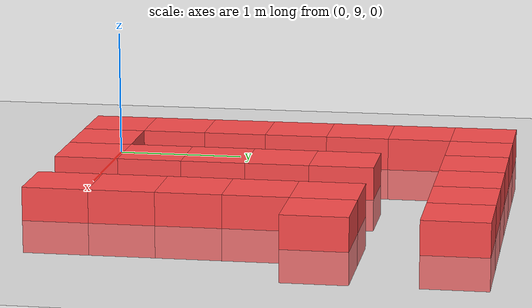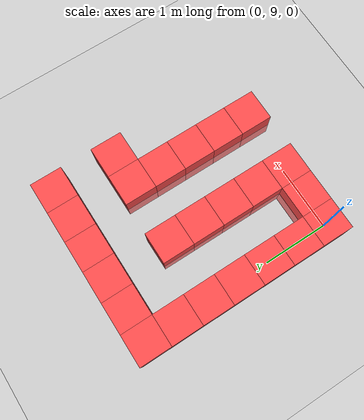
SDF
<sdf version="1.6">
 <world name="default">
  <model name="ground_plane">
   <static>1</static>
   <link name="link">
    <collision name="collision">
     <geometry><plane><normal>0 0 1</normal><size>100 100</size></plane></geometry>
     <surface><friction><ode><mu>100</mu><mu2>50</mu2></ode></friction></surface>
    </collision>
    <visual name="visual">
     <cast_shadows>0</cast_shadows>
     <geometry><plane><normal>0 0 1</normal><size>100 100</size></plane></geometry>
     <material>
      <script><uri>file://media/materials/scripts/gazebo.material</uri><name>Gazebo/Grey</name></script>
     </material>
    </visual>
   </link>
  </model>
  <model name="Box_Red_18">
   <link name="link_0">
    <inertial>
     <mass>1</mass>
     <inertia>
      <ixx>0.166667</ixx>
      <ixy>0</ixy>
      <ixz>0</ixz>
      <iyy>0.166667</iyy>
      <iyz>0</iyz>
      <izz>0.166667</izz>
     </inertia>
    </inertial>
    <visual name="visual">
     <geometry><box><size>0.5 0.5 0.5</size></box></geometry>
     <material>
      <lighting>1</lighting>
      <script><uri>file://media/materials/scripts/gazebo.material</uri><name>Gazebo/Grey</name></script>
      <ambient>1 0.3 0.3 1</ambient>
      <diffuse>0.7 0.7 0.7 1</diffuse>
      <specular>0.01 0.01 0.01 1</specular>
      <emissive>0 0 0 1</emissive>
      <shader type="vertex"><normal_map>__default__</normal_map></shader>
     </material>
    </visual>
    <collision name="collision">
     <geometry><box><size>0.5 0.5 0.5</size></box></geometry>
     <surface>
      <friction>
       <ode><mu>1</mu><mu2>1</mu2><fdir1>0 0 0</fdir1><slip1>0</slip1><slip2>0</slip2></ode>
       <torsional>
        <coefficient>1</coefficient>
        <patch_radius>0</patch_radius>
        <surface_radius>0</surface_radius>
        <use_patch_radius>1</use_patch_radius>
        <ode><slip>0</slip></ode>
       </torsional>
      </friction>
      <bounce><restitution_coefficient>0</restitution_coefficient><threshold>1e+06</threshold></bounce>
      <contact>
       <collide_without_contact>0</collide_without_contact>
       <collide_without_contact_bitmask>1</collide_without_contact_bitmask>
       <collide_bitmask>1</collide_bitmask>
       <ode>
        <soft_cfm>0</soft_cfm>
        <soft_erp>0.2</soft_erp>
        <kp>1e+13</kp>
        <kd>1</kd>
        <max_vel>0.01</max_vel>
        <min_depth>0</min_depth>
       </ode>
       <bullet>
        <split_impulse>1</split_impulse>
        <split_impulse_penetration_threshold>-0.01</split_impulse_penetration_threshold>
        <soft_cfm>0</soft_cfm>
        <soft_erp>0.2</soft_erp>
        <kp>1e+13</kp>
        <kd>1</kd>
       </bullet>
      </contact>
     </surface>
    </collision>
   </link>
   <static>0</static>
   <pose>0.000 9.000 0.000 0 0 0</pose>
  </model>
  <model name="Box_Red_19">
   <link name="link_0">
    <inertial>
     <mass>1</mass>
     <inertia>
      <ixx>0.166667</ixx>
      <ixy>0</ixy>
      <ixz>0</ixz>
      <iyy>0.166667</iyy>
      <iyz>0</iyz>
      <izz>0.166667</izz>
     </inertia>
    </inertial>
    <visual name="visual">
     <geometry><box><size>0.5 0.5 0.5</size></box></geometry>
     <material>
      <lighting>1</lighting>
      <script><uri>file://media/materials/scripts/gazebo.material</uri><name>Gazebo/Grey</name></script>
      <ambient>1 0.3 0.3 1</ambient>
      <diffuse>0.7 0.7 0.7 1</diffuse>
      <specular>0.01 0.01 0.01 1</specular>
      <emissive>0 0 0 1</emissive>
      <shader type="vertex"><normal_map>__default__</normal_map></shader>
     </material>
    </visual>
    <collision name="collision">
     <geometry><box><size>0.5 0.5 0.5</size></box></geometry>
     <surface>
      <friction>
       <ode><mu>1</mu><mu2>1</mu2><fdir1>0 0 0</fdir1><slip1>0</slip1><slip2>0</slip2></ode>
       <torsional>
        <coefficient>1</coefficient>
        <patch_radius>0</patch_radius>
        <surface_radius>0</surface_radius>
        <use_patch_radius>1</use_patch_radius>
        <ode><slip>0</slip></ode>
       </torsional>
      </friction>
      <bounce><restitution_coefficient>0</restitution_coefficient><threshold>1e+06</threshold></bounce>
      <contact>
       <collide_without_contact>0</collide_without_contact>
       <collide_without_contact_bitmask>1</collide_without_contact_bitmask>
       <collide_bitmask>1</collide_bitmask>
       <ode>
        <soft_cfm>0</soft_cfm>
        <soft_erp>0.2</soft_erp>
        <kp>1e+13</kp>
        <kd>1</kd>
        <max_vel>0.01</max_vel>
        <min_depth>0</min_depth>
       </ode>
       <bullet>
        <split_impulse>1</split_impulse>
        <split_impulse_penetration_threshold>-0.01</split_impulse_penetration_threshold>
        <soft_cfm>0</soft_cfm>
        <soft_erp>0.2</soft_erp>
        <kp>1e+13</kp>
        <kd>1</kd>
       </bullet>
      </contact>
     </surface>
    </collision>
   </link>
   <static>0</static>
   <pose>0.000 9.500 0.000 0 0 0</pose>
  </model>
  <model name="Box_Red_20">
   <link name="link_0">
    <inertial>
     <mass>1</mass>
     <inertia>
      <ixx>0.166667</ixx>
      <ixy>0</ixy>
      <ixz>0</ixz>
      <iyy>0.166667</iyy>
      <iyz>0</iyz>
      <izz>0.166667</izz>
     </inertia>
    </inertial>
    <visual name="visual">
     <geometry><box><size>0.5 0.5 0.5</size></box></geometry>
     <material>
      <lighting>1</lighting>
      <script><uri>file://media/materials/scripts/gazebo.material</uri><name>Gazebo/Grey</name></script>
      <ambient>1 0.3 0.3 1</ambient>
      <diffuse>0.7 0.7 0.7 1</diffuse>
      <specular>0.01 0.01 0.01 1</specular>
      <emissive>0 0 0 1</emissive>
      <shader type="vertex"><normal_map>__default__</normal_map></shader>
     </material>
    </visual>
    <collision name="collision">
     <geometry><box><size>0.5 0.5 0.5</size></box></geometry>
     <surface>
      <friction>
       <ode><mu>1</mu><mu2>1</mu2><fdir1>0 0 0</fdir1><slip1>0</slip1><slip2>0</slip2></ode>
       <torsional>
        <coefficient>1</coefficient>
        <patch_radius>0</patch_radius>
        <surface_radius>0</surface_radius>
        <use_patch_radius>1</use_patch_radius>
        <ode><slip>0</slip></ode>
       </torsional>
      </friction>
      <bounce><restitution_coefficient>0</restitution_coefficient><threshold>1e+06</threshold></bounce>
      <contact>
       <collide_without_contact>0</collide_without_contact>
       <collide_without_contact_bitmask>1</collide_without_contact_bitmask>
       <collide_bitmask>1</collide_bitmask>
       <ode>
        <soft_cfm>0</soft_cfm>
        <soft_erp>0.2</soft_erp>
        <kp>1e+13</kp>
        <kd>1</kd>
        <max_vel>0.01</max_vel>
        <min_depth>0</min_depth>
       </ode>
       <bullet>
        <split_impulse>1</split_impulse>
        <split_impulse_penetration_threshold>-0.01</split_impulse_penetration_threshold>
        <soft_cfm>0</soft_cfm>
        <soft_erp>0.2</soft_erp>
        <kp>1e+13</kp>
        <kd>1</kd>
       </bullet>
      </contact>
     </surface>
    </collision>
   </link>
   <static>0</static>
   <pose>0.000 10.000 0.000 0 0 0</pose>
  </model>
  <model name="Box_Red_21">
   <link name="link_0">
    <inertial>
     <mass>1</mass>
     <inertia>
      <ixx>0.166667</ixx>
      <ixy>0</ixy>
      <ixz>0</ixz>
      <iyy>0.166667</iyy>
      <iyz>0</iyz>
      <izz>0.166667</izz>
     </inertia>
    </inertial>
    <visual name="visual">
     <geometry><box><size>0.5 0.5 0.5</size></box></geometry>
     <material>
      <lighting>1</lighting>
      <script><uri>file://media/materials/scripts/gazebo.material</uri><name>Gazebo/Grey</name></script>
      <ambient>1 0.3 0.3 1</ambient>
      <diffuse>0.7 0.7 0.7 1</diffuse>
      <specular>0.01 0.01 0.01 1</specular>
      <emissive>0 0 0 1</emissive>
      <shader type="vertex"><normal_map>__default__</normal_map></shader>
     </material>
    </visual>
    <collision name="collision">
     <geometry><box><size>0.5 0.5 0.5</size></box></geometry>
     <surface>
      <friction>
       <ode><mu>1</mu><mu2>1</mu2><fdir1>0 0 0</fdir1><slip1>0</slip1><slip2>0</slip2></ode>
       <torsional>
        <coefficient>1</coefficient>
        <patch_radius>0</patch_radius>
        <surface_radius>0</surface_radius>
        <use_patch_radius>1</use_patch_radius>
        <ode><slip>0</slip></ode>
       </torsional>
      </friction>
      <bounce><restitution_coefficient>0</restitution_coefficient><threshold>1e+06</threshold></bounce>
      <contact>
       <collide_without_contact>0</collide_without_contact>
       <collide_without_contact_bitmask>1</collide_without_contact_bitmask>
       <collide_bitmask>1</collide_bitmask>
       <ode>
        <soft_cfm>0</soft_cfm>
        <soft_erp>0.2</soft_erp>
        <kp>1e+13</kp>
        <kd>1</kd>
        <max_vel>0.01</max_vel>
        <min_depth>0</min_depth>
       </ode>
       <bullet>
        <split_impulse>1</split_impulse>
        <split_impulse_penetration_threshold>-0.01</split_impulse_penetration_threshold>
        <soft_cfm>0</soft_cfm>
        <soft_erp>0.2</soft_erp>
        <kp>1e+13</kp>
        <kd>1</kd>
       </bullet>
      </contact>
     </surface>
    </collision>
   </link>
   <static>0</static>
   <pose>0.000 10.500 0.000 0 0 0</pose>
  </model>
  <model name="Box_Red_22">
   <link name="link_0">
    <inertial>
     <mass>1</mass>
     <inertia>
      <ixx>0.166667</ixx>
      <ixy>0</ixy>
      <ixz>0</ixz>
      <iyy>0.166667</iyy>
      <iyz>0</iyz>
      <izz>0.166667</izz>
     </inertia>
    </inertial>
    <visual name="visual">
     <geometry><box><size>0.5 0.5 0.5</size></box></geometry>
     <material>
      <lighting>1</lighting>
      <script><uri>file://media/materials/scripts/gazebo.material</uri><name>Gazebo/Grey</name></script>
      <ambient>1 0.3 0.3 1</ambient>
      <diffuse>0.7 0.7 0.7 1</diffuse>
      <specular>0.01 0.01 0.01 1</specular>
      <emissive>0 0 0 1</emissive>
      <shader type="vertex"><normal_map>__default__</normal_map></shader>
     </material>
    </visual>
    <collision name="collision">
     <geometry><box><size>0.5 0.5 0.5</size></box></geometry>
     <surface>
      <friction>
       <ode><mu>1</mu><mu2>1</mu2><fdir1>0 0 0</fdir1><slip1>0</slip1><slip2>0</slip2></ode>
       <torsional>
        <coefficient>1</coefficient>
        <patch_radius>0</patch_radius>
        <surface_radius>0</surface_radius>
        <use_patch_radius>1</use_patch_radius>
        <ode><slip>0</slip></ode>
       </torsional>
      </friction>
      <bounce><restitution_coefficient>0</restitution_coefficient><threshold>1e+06</threshold></bounce>
      <contact>
       <collide_without_contact>0</collide_without_contact>
       <collide_without_contact_bitmask>1</collide_without_contact_bitmask>
       <collide_bitmask>1</collide_bitmask>
       <ode>
        <soft_cfm>0</soft_cfm>
        <soft_erp>0.2</soft_erp>
        <kp>1e+13</kp>
        <kd>1</kd>
        <max_vel>0.01</max_vel>
        <min_depth>0</min_depth>
       </ode>
       <bullet>
        <split_impulse>1</split_impulse>
        <split_impulse_penetration_threshold>-0.01</split_impulse_penetration_threshold>
        <soft_cfm>0</soft_cfm>
        <soft_erp>0.2</soft_erp>
        <kp>1e+13</kp>
        <kd>1</kd>
       </bullet>
      </contact>
     </surface>
    </collision>
   </link>
   <static>0</static>
   <pose>0.000 11.000 0.000 0 0 0</pose>
  </model>
  <model name="Box_Red_23">
   <link name="link_0">
    <inertial>
     <mass>1</mass>
     <inertia>
      <ixx>0.166667</ixx>
      <ixy>0</ixy>
      <ixz>0</ixz>
      <iyy>0.166667</iyy>
      <iyz>0</iyz>
      <izz>0.166667</izz>
     </inertia>
    </inertial>
    <visual name="visual">
     <geometry><box><size>0.5 0.5 0.5</size></box></geometry>
     <material>
      <lighting>1</lighting>
      <script><uri>file://media/materials/scripts/gazebo.material</uri><name>Gazebo/Grey</name></script>
      <ambient>1 0.3 0.3 1</ambient>
      <diffuse>0.7 0.7 0.7 1</diffuse>
      <specular>0.01 0.01 0.01 1</specular>
      <emissive>0 0 0 1</emissive>
      <shader type="vertex"><normal_map>__default__</normal_map></shader>
     </material>
    </visual>
    <collision name="collision">
     <geometry><box><size>0.5 0.5 0.5</size></box></geometry>
     <surface>
      <friction>
       <ode><mu>1</mu><mu2>1</mu2><fdir1>0 0 0</fdir1><slip1>0</slip1><slip2>0</slip2></ode>
       <torsional>
        <coefficient>1</coefficient>
        <patch_radius>0</patch_radius>
        <surface_radius>0</surface_radius>
        <use_patch_radius>1</use_patch_radius>
        <ode><slip>0</slip></ode>
       </torsional>
      </friction>
      <bounce><restitution_coefficient>0</restitution_coefficient><threshold>1e+06</threshold></bounce>
      <contact>
       <collide_without_contact>0</collide_without_contact>
       <collide_without_contact_bitmask>1</collide_without_contact_bitmask>
       <collide_bitmask>1</collide_bitmask>
       <ode>
        <soft_cfm>0</soft_cfm>
        <soft_erp>0.2</soft_erp>
        <kp>1e+13</kp>
        <kd>1</kd>
        <max_vel>0.01</max_vel>
        <min_depth>0</min_depth>
       </ode>
       <bullet>
        <split_impulse>1</split_impulse>
        <split_impulse_penetration_threshold>-0.01</split_impulse_penetration_threshold>
        <soft_cfm>0</soft_cfm>
        <soft_erp>0.2</soft_erp>
        <kp>1e+13</kp>
        <kd>1</kd>
       </bullet>
      </contact>
     </surface>
    </collision>
   </link>
   <static>0</static>
   <pose>0.000 11.500 0.000 0 0 0</pose>
  </model>
  <model name="Box_Red_24">
   <link name="link_0">
    <inertial>
     <mass>1</mass>
     <inertia>
      <ixx>0.166667</ixx>
      <ixy>0</ixy>
      <ixz>0</ixz>
      <iyy>0.166667</iyy>
      <iyz>0</iyz>
      <izz>0.166667</izz>
     </inertia>
    </inertial>
    <visual name="visual">
     <geometry><box><size>0.5 0.5 0.5</size></box></geometry>
     <material>
      <lighting>1</lighting>
      <script><uri>file://media/materials/scripts/gazebo.material</uri><name>Gazebo/Grey</name></script>
      <ambient>1 0.3 0.3 1</ambient>
      <diffuse>0.7 0.7 0.7 1</diffuse>
      <specular>0.01 0.01 0.01 1</specular>
      <emissive>0 0 0 1</emissive>
      <shader type="vertex"><normal_map>__default__</normal_map></shader>
     </material>
    </visual>
    <collision name="collision">
     <geometry><box><size>0.5 0.5 0.5</size></box></geometry>
     <surface>
      <friction>
       <ode><mu>1</mu><mu2>1</mu2><fdir1>0 0 0</fdir1><slip1>0</slip1><slip2>0</slip2></ode>
       <torsional>
        <coefficient>1</coefficient>
        <patch_radius>0</patch_radius>
        <surface_radius>0</surface_radius>
        <use_patch_radius>1</use_patch_radius>
        <ode><slip>0</slip></ode>
       </torsional>
      </friction>
      <bounce><restitution_coefficient>0</restitution_coefficient><threshold>1e+06</threshold></bounce>
      <contact>
       <collide_without_contact>0</collide_without_contact>
       <collide_without_contact_bitmask>1</collide_without_contact_bitmask>
       <collide_bitmask>1</collide_bitmask>
       <ode>
        <soft_cfm>0</soft_cfm>
        <soft_erp>0.2</soft_erp>
        <kp>1e+13</kp>
        <kd>1</kd>
        <max_vel>0.01</max_vel>
        <min_depth>0</min_depth>
       </ode>
       <bullet>
        <split_impulse>1</split_impulse>
        <split_impulse_penetration_threshold>-0.01</split_impulse_penetration_threshold>
        <soft_cfm>0</soft_cfm>
        <soft_erp>0.2</soft_erp>
        <kp>1e+13</kp>
        <kd>1</kd>
       </bullet>
      </contact>
     </surface>
    </collision>
   </link>
   <static>0</static>
   <pose>0.000 12.000 0.000 0 0 0</pose>
  </model>
  <model name="Box_Red_43">
   <link name="link_0">
    <inertial>
     <mass>1</mass>
     <inertia>
      <ixx>0.166667</ixx>
      <ixy>0</ixy>
      <ixz>0</ixz>
      <iyy>0.166667</iyy>
      <iyz>0</iyz>
      <izz>0.166667</izz>
     </inertia>
    </inertial>
    <visual name="visual">
     <geometry><box><size>0.5 0.5 0.5</size></box></geometry>
     <material>
      <lighting>1</lighting>
      <script><uri>file://media/materials/scripts/gazebo.material</uri><name>Gazebo/Grey</name></script>
      <ambient>1 0.3 0.3 1</ambient>
      <diffuse>0.7 0.7 0.7 1</diffuse>
      <specular>0.01 0.01 0.01 1</specular>
      <emissive>0 0 0 1</emissive>
      <shader type="vertex"><normal_map>__default__</normal_map></shader>
     </material>
    </visual>
    <collision name="collision">
     <geometry><box><size>0.5 0.5 0.5</size></box></geometry>
     <surface>
      <friction>
       <ode><mu>1</mu><mu2>1</mu2><fdir1>0 0 0</fdir1><slip1>0</slip1><slip2>0</slip2></ode>
       <torsional>
        <coefficient>1</coefficient>
        <patch_radius>0</patch_radius>
        <surface_radius>0</surface_radius>
        <use_patch_radius>1</use_patch_radius>
        <ode><slip>0</slip></ode>
       </torsional>
      </friction>
      <bounce><restitution_coefficient>0</restitution_coefficient><threshold>1e+06</threshold></bounce>
      <contact>
       <collide_without_contact>0</collide_without_contact>
       <collide_without_contact_bitmask>1</collide_without_contact_bitmask>
       <collide_bitmask>1</collide_bitmask>
       <ode>
        <soft_cfm>0</soft_cfm>
        <soft_erp>0.2</soft_erp>
        <kp>1e+13</kp>
        <kd>1</kd>
        <max_vel>0.01</max_vel>
        <min_depth>0</min_depth>
       </ode>
       <bullet>
        <split_impulse>1</split_impulse>
        <split_impulse_penetration_threshold>-0.01</split_impulse_penetration_threshold>
        <soft_cfm>0</soft_cfm>
        <soft_erp>0.2</soft_erp>
        <kp>1e+13</kp>
        <kd>1</kd>
       </bullet>
      </contact>
     </surface>
    </collision>
   </link>
   <static>0</static>
   <pose>0.500 9.000 0.000 0 0 0</pose>
  </model>
  <model name="Box_Red_49">
   <link name="link_0">
    <inertial>
     <mass>1</mass>
     <inertia>
      <ixx>0.166667</ixx>
      <ixy>0</ixy>
      <ixz>0</ixz>
      <iyy>0.166667</iyy>
      <iyz>0</iyz>
      <izz>0.166667</izz>
     </inertia>
    </inertial>
    <visual name="visual">
     <geometry><box><size>0.5 0.5 0.5</size></box></geometry>
     <material>
      <lighting>1</lighting>
      <script><uri>file://media/materials/scripts/gazebo.material</uri><name>Gazebo/Grey</name></script>
      <ambient>1 0.3 0.3 1</ambient>
      <diffuse>0.7 0.7 0.7 1</diffuse>
      <specular>0.01 0.01 0.01 1</specular>
      <emissive>0 0 0 1</emissive>
      <shader type="vertex"><normal_map>__default__</normal_map></shader>
     </material>
    </visual>
    <collision name="collision">
     <geometry><box><size>0.5 0.5 0.5</size></box></geometry>
     <surface>
      <friction>
       <ode><mu>1</mu><mu2>1</mu2><fdir1>0 0 0</fdir1><slip1>0</slip1><slip2>0</slip2></ode>
       <torsional>
        <coefficient>1</coefficient>
        <patch_radius>0</patch_radius>
        <surface_radius>0</surface_radius>
        <use_patch_radius>1</use_patch_radius>
        <ode><slip>0</slip></ode>
       </torsional>
      </friction>
      <bounce><restitution_coefficient>0</restitution_coefficient><threshold>1e+06</threshold></bounce>
      <contact>
       <collide_without_contact>0</collide_without_contact>
       <collide_without_contact_bitmask>1</collide_without_contact_bitmask>
       <collide_bitmask>1</collide_bitmask>
       <ode>
        <soft_cfm>0</soft_cfm>
        <soft_erp>0.2</soft_erp>
        <kp>1e+13</kp>
        <kd>1</kd>
        <max_vel>0.01</max_vel>
        <min_depth>0</min_depth>
       </ode>
       <bullet>
        <split_impulse>1</split_impulse>
        <split_impulse_penetration_threshold>-0.01</split_impulse_penetration_threshold>
        <soft_cfm>0</soft_cfm>
        <soft_erp>0.2</soft_erp>
        <kp>1e+13</kp>
        <kd>1</kd>
       </bullet>
      </contact>
     </surface>
    </collision>
   </link>
   <static>0</static>
   <pose>0.500 12.000 0.000 0 0 0</pose>
  </model>
  <model name="Box_Red_68">
   <link name="link_0">
    <inertial>
     <mass>1</mass>
     <inertia>
      <ixx>0.166667</ixx>
      <ixy>0</ixy>
      <ixz>0</ixz>
      <iyy>0.166667</iyy>
      <iyz>0</iyz>
      <izz>0.166667</izz>
     </inertia>
    </inertial>
    <visual name="visual">
     <geometry><box><size>0.5 0.5 0.5</size></box></geometry>
     <material>
      <lighting>1</lighting>
      <script><uri>file://media/materials/scripts/gazebo.material</uri><name>Gazebo/Grey</name></script>
      <ambient>1 0.3 0.3 1</ambient>
      <diffuse>0.7 0.7 0.7 1</diffuse>
      <specular>0.01 0.01 0.01 1</specular>
      <emissive>0 0 0 1</emissive>
      <shader type="vertex"><normal_map>__default__</normal_map></shader>
     </material>
    </visual>
    <collision name="collision">
     <geometry><box><size>0.5 0.5 0.5</size></box></geometry>
     <surface>
      <friction>
       <ode><mu>1</mu><mu2>1</mu2><fdir1>0 0 0</fdir1><slip1>0</slip1><slip2>0</slip2></ode>
       <torsional>
        <coefficient>1</coefficient>
        <patch_radius>0</patch_radius>
        <surface_radius>0</surface_radius>
        <use_patch_radius>1</use_patch_radius>
        <ode><slip>0</slip></ode>
       </torsional>
      </friction>
      <bounce><restitution_coefficient>0</restitution_coefficient><threshold>1e+06</threshold></bounce>
      <contact>
       <collide_without_contact>0</collide_without_contact>
       <collide_without_contact_bitmask>1</collide_without_contact_bitmask>
       <collide_bitmask>1</collide_bitmask>
       <ode>
        <soft_cfm>0</soft_cfm>
        <soft_erp>0.2</soft_erp>
        <kp>1e+13</kp>
        <kd>1</kd>
        <max_vel>0.01</max_vel>
        <min_depth>0</min_depth>
       </ode>
       <bullet>
        <split_impulse>1</split_impulse>
        <split_impulse_penetration_threshold>-0.01</split_impulse_penetration_threshold>
        <soft_cfm>0</soft_cfm>
        <soft_erp>0.2</soft_erp>
        <kp>1e+13</kp>
        <kd>1</kd>
       </bullet>
      </contact>
     </surface>
    </collision>
   </link>
   <static>0</static>
   <pose>1.000 9.000 0.000 0 0 0</pose>
  </model>
  <model name="Box_Red_69">
   <link name="link_0">
    <inertial>
     <mass>1</mass>
     <inertia>
      <ixx>0.166667</ixx>
      <ixy>0</ixy>
      <ixz>0</ixz>
      <iyy>0.166667</iyy>
      <iyz>0</iyz>
      <izz>0.166667</izz>
     </inertia>
    </inertial>
    <visual name="visual">
     <geometry><box><size>0.5 0.5 0.5</size></box></geometry>
     <material>
      <lighting>1</lighting>
      <script><uri>file://media/materials/scripts/gazebo.material</uri><name>Gazebo/Grey</name></script>
      <ambient>1 0.3 0.3 1</ambient>
      <diffuse>0.7 0.7 0.7 1</diffuse>
      <specular>0.01 0.01 0.01 1</specular>
      <emissive>0 0 0 1</emissive>
      <shader type="vertex"><normal_map>__default__</normal_map></shader>
     </material>
    </visual>
    <collision name="collision">
     <geometry><box><size>0.5 0.5 0.5</size></box></geometry>
     <surface>
      <friction>
       <ode><mu>1</mu><mu2>1</mu2><fdir1>0 0 0</fdir1><slip1>0</slip1><slip2>0</slip2></ode>
       <torsional>
        <coefficient>1</coefficient>
        <patch_radius>0</patch_radius>
        <surface_radius>0</surface_radius>
        <use_patch_radius>1</use_patch_radius>
        <ode><slip>0</slip></ode>
       </torsional>
      </friction>
      <bounce><restitution_coefficient>0</restitution_coefficient><threshold>1e+06</threshold></bounce>
      <contact>
       <collide_without_contact>0</collide_without_contact>
       <collide_without_contact_bitmask>1</collide_without_contact_bitmask>
       <collide_bitmask>1</collide_bitmask>
       <ode>
        <soft_cfm>0</soft_cfm>
        <soft_erp>0.2</soft_erp>
        <kp>1e+13</kp>
        <kd>1</kd>
        <max_vel>0.01</max_vel>
        <min_depth>0</min_depth>
       </ode>
       <bullet>
        <split_impulse>1</split_impulse>
        <split_impulse_penetration_threshold>-0.01</split_impulse_penetration_threshold>
        <soft_cfm>0</soft_cfm>
        <soft_erp>0.2</soft_erp>
        <kp>1e+13</kp>
        <kd>1</kd>
       </bullet>
      </contact>
     </surface>
    </collision>
   </link>
   <static>0</static>
   <pose>1.000 9.500 0.000 0 0 0</pose>
  </model>
  <model name="Box_Red_70">
   <link name="link_0">
    <inertial>
     <mass>1</mass>
     <inertia>
      <ixx>0.166667</ixx>
      <ixy>0</ixy>
      <ixz>0</ixz>
      <iyy>0.166667</iyy>
      <iyz>0</iyz>
      <izz>0.166667</izz>
     </inertia>
    </inertial>
    <visual name="visual">
     <geometry><box><size>0.5 0.5 0.5</size></box></geometry>
     <material>
      <lighting>1</lighting>
      <script><uri>file://media/materials/scripts/gazebo.material</uri><name>Gazebo/Grey</name></script>
      <ambient>1 0.3 0.3 1</ambient>
      <diffuse>0.7 0.7 0.7 1</diffuse>
      <specular>0.01 0.01 0.01 1</specular>
      <emissive>0 0 0 1</emissive>
      <shader type="vertex"><normal_map>__default__</normal_map></shader>
     </material>
    </visual>
    <collision name="collision">
     <geometry><box><size>0.5 0.5 0.5</size></box></geometry>
     <surface>
      <friction>
       <ode><mu>1</mu><mu2>1</mu2><fdir1>0 0 0</fdir1><slip1>0</slip1><slip2>0</slip2></ode>
       <torsional>
        <coefficient>1</coefficient>
        <patch_radius>0</patch_radius>
        <surface_radius>0</surface_radius>
        <use_patch_radius>1</use_patch_radius>
        <ode><slip>0</slip></ode>
       </torsional>
      </friction>
      <bounce><restitution_coefficient>0</restitution_coefficient><threshold>1e+06</threshold></bounce>
      <contact>
       <collide_without_contact>0</collide_without_contact>
       <collide_without_contact_bitmask>1</collide_without_contact_bitmask>
       <collide_bitmask>1</collide_bitmask>
       <ode>
        <soft_cfm>0</soft_cfm>
        <soft_erp>0.2</soft_erp>
        <kp>1e+13</kp>
        <kd>1</kd>
        <max_vel>0.01</max_vel>
        <min_depth>0</min_depth>
       </ode>
       <bullet>
        <split_impulse>1</split_impulse>
        <split_impulse_penetration_threshold>-0.01</split_impulse_penetration_threshold>
        <soft_cfm>0</soft_cfm>
        <soft_erp>0.2</soft_erp>
        <kp>1e+13</kp>
        <kd>1</kd>
       </bullet>
      </contact>
     </surface>
    </collision>
   </link>
   <static>0</static>
   <pose>1.000 10.000 0.000 0 0 0</pose>
  </model>
  <model name="Box_Red_71">
   <link name="link_0">
    <inertial>
     <mass>1</mass>
     <inertia>
      <ixx>0.166667</ixx>
      <ixy>0</ixy>
      <ixz>0</ixz>
      <iyy>0.166667</iyy>
      <iyz>0</iyz>
      <izz>0.166667</izz>
     </inertia>
    </inertial>
    <visual name="visual">
     <geometry><box><size>0.5 0.5 0.5</size></box></geometry>
     <material>
      <lighting>1</lighting>
      <script><uri>file://media/materials/scripts/gazebo.material</uri><name>Gazebo/Grey</name></script>
      <ambient>1 0.3 0.3 1</ambient>
      <diffuse>0.7 0.7 0.7 1</diffuse>
      <specular>0.01 0.01 0.01 1</specular>
      <emissive>0 0 0 1</emissive>
      <shader type="vertex"><normal_map>__default__</normal_map></shader>
     </material>
    </visual>
    <collision name="collision">
     <geometry><box><size>0.5 0.5 0.5</size></box></geometry>
     <surface>
      <friction>
       <ode><mu>1</mu><mu2>1</mu2><fdir1>0 0 0</fdir1><slip1>0</slip1><slip2>0</slip2></ode>
       <torsional>
        <coefficient>1</coefficient>
        <patch_radius>0</patch_radius>
        <surface_radius>0</surface_radius>
        <use_patch_radius>1</use_patch_radius>
        <ode><slip>0</slip></ode>
       </torsional>
      </friction>
      <bounce><restitution_coefficient>0</restitution_coefficient><threshold>1e+06</threshold></bounce>
      <contact>
       <collide_without_contact>0</collide_without_contact>
       <collide_without_contact_bitmask>1</collide_without_contact_bitmask>
       <collide_bitmask>1</collide_bitmask>
       <ode>
        <soft_cfm>0</soft_cfm>
        <soft_erp>0.2</soft_erp>
        <kp>1e+13</kp>
        <kd>1</kd>
        <max_vel>0.01</max_vel>
        <min_depth>0</min_depth>
       </ode>
       <bullet>
        <split_impulse>1</split_impulse>
        <split_impulse_penetration_threshold>-0.01</split_impulse_penetration_threshold>
        <soft_cfm>0</soft_cfm>
        <soft_erp>0.2</soft_erp>
        <kp>1e+13</kp>
        <kd>1</kd>
       </bullet>
      </contact>
     </surface>
    </collision>
   </link>
   <static>0</static>
   <pose>1.000 10.500 0.000 0 0 0</pose>
  </model>
  <model name="Box_Red_72">
   <link name="link_0">
    <inertial>
     <mass>1</mass>
     <inertia>
      <ixx>0.166667</ixx>
      <ixy>0</ixy>
      <ixz>0</ixz>
      <iyy>0.166667</iyy>
      <iyz>0</iyz>
      <izz>0.166667</izz>
     </inertia>
    </inertial>
    <visual name="visual">
     <geometry><box><size>0.5 0.5 0.5</size></box></geometry>
     <material>
      <lighting>1</lighting>
      <script><uri>file://media/materials/scripts/gazebo.material</uri><name>Gazebo/Grey</name></script>
      <ambient>1 0.3 0.3 1</ambient>
      <diffuse>0.7 0.7 0.7 1</diffuse>
      <specular>0.01 0.01 0.01 1</specular>
      <emissive>0 0 0 1</emissive>
      <shader type="vertex"><normal_map>__default__</normal_map></shader>
     </material>
    </visual>
    <collision name="collision">
     <geometry><box><size>0.5 0.5 0.5</size></box></geometry>
     <surface>
      <friction>
       <ode><mu>1</mu><mu2>1</mu2><fdir1>0 0 0</fdir1><slip1>0</slip1><slip2>0</slip2></ode>
       <torsional>
        <coefficient>1</coefficient>
        <patch_radius>0</patch_radius>
        <surface_radius>0</surface_radius>
        <use_patch_radius>1</use_patch_radius>
        <ode><slip>0</slip></ode>
       </torsional>
      </friction>
      <bounce><restitution_coefficient>0</restitution_coefficient><threshold>1e+06</threshold></bounce>
      <contact>
       <collide_without_contact>0</collide_without_contact>
       <collide_without_contact_bitmask>1</collide_without_contact_bitmask>
       <collide_bitmask>1</collide_bitmask>
       <ode>
        <soft_cfm>0</soft_cfm>
        <soft_erp>0.2</soft_erp>
        <kp>1e+13</kp>
        <kd>1</kd>
        <max_vel>0.01</max_vel>
        <min_depth>0</min_depth>
       </ode>
       <bullet>
        <split_impulse>1</split_impulse>
        <split_impulse_penetration_threshold>-0.01</split_impulse_penetration_threshold>
        <soft_cfm>0</soft_cfm>
        <soft_erp>0.2</soft_erp>
        <kp>1e+13</kp>
        <kd>1</kd>
       </bullet>
      </contact>
     </surface>
    </collision>
   </link>
   <static>0</static>
   <pose>1.000 11.000 0.000 0 0 0</pose>
  </model>
  <model name="Box_Red_74">
   <link name="link_0">
    <inertial>
     <mass>1</mass>
     <inertia>
      <ixx>0.166667</ixx>
      <ixy>0</ixy>
      <ixz>0</ixz>
      <iyy>0.166667</iyy>
      <iyz>0</iyz>
      <izz>0.166667</izz>
     </inertia>
    </inertial>
    <visual name="visual">
     <geometry><box><size>0.5 0.5 0.5</size></box></geometry>
     <material>
      <lighting>1</lighting>
      <script><uri>file://media/materials/scripts/gazebo.material</uri><name>Gazebo/Grey</name></script>
      <ambient>1 0.3 0.3 1</ambient>
      <diffuse>0.7 0.7 0.7 1</diffuse>
      <specular>0.01 0.01 0.01 1</specular>
      <emissive>0 0 0 1</emissive>
      <shader type="vertex"><normal_map>__default__</normal_map></shader>
     </material>
    </visual>
    <collision name="collision">
     <geometry><box><size>0.5 0.5 0.5</size></box></geometry>
     <surface>
      <friction>
       <ode><mu>1</mu><mu2>1</mu2><fdir1>0 0 0</fdir1><slip1>0</slip1><slip2>0</slip2></ode>
       <torsional>
        <coefficient>1</coefficient>
        <patch_radius>0</patch_radius>
        <surface_radius>0</surface_radius>
        <use_patch_radius>1</use_patch_radius>
        <ode><slip>0</slip></ode>
       </torsional>
      </friction>
      <bounce><restitution_coefficient>0</restitution_coefficient><threshold>1e+06</threshold></bounce>
      <contact>
       <collide_without_contact>0</collide_without_contact>
       <collide_without_contact_bitmask>1</collide_without_contact_bitmask>
       <collide_bitmask>1</collide_bitmask>
       <ode>
        <soft_cfm>0</soft_cfm>
        <soft_erp>0.2</soft_erp>
        <kp>1e+13</kp>
        <kd>1</kd>
        <max_vel>0.01</max_vel>
        <min_depth>0</min_depth>
       </ode>
       <bullet>
        <split_impulse>1</split_impulse>
        <split_impulse_penetration_threshold>-0.01</split_impulse_penetration_threshold>
        <soft_cfm>0</soft_cfm>
        <soft_erp>0.2</soft_erp>
        <kp>1e+13</kp>
        <kd>1</kd>
       </bullet>
      </contact>
     </surface>
    </collision>
   </link>
   <static>0</static>
   <pose>1.000 12.000 0.000 0 0 0</pose>
  </model>
  <model name="Box_Red_99">
   <link name="link_0">
    <inertial>
     <mass>1</mass>
     <inertia>
      <ixx>0.166667</ixx>
      <ixy>0</ixy>
      <ixz>0</ixz>
      <iyy>0.166667</iyy>
      <iyz>0</iyz>
      <izz>0.166667</izz>
     </inertia>
    </inertial>
    <visual name="visual">
     <geometry><box><size>0.5 0.5 0.5</size></box></geometry>
     <material>
      <lighting>1</lighting>
      <script><uri>file://media/materials/scripts/gazebo.material</uri><name>Gazebo/Grey</name></script>
      <ambient>1 0.3 0.3 1</ambient>
      <diffuse>0.7 0.7 0.7 1</diffuse>
      <specular>0.01 0.01 0.01 1</specular>
      <emissive>0 0 0 1</emissive>
      <shader type="vertex"><normal_map>__default__</normal_map></shader>
     </material>
    </visual>
    <collision name="collision">
     <geometry><box><size>0.5 0.5 0.5</size></box></geometry>
     <surface>
      <friction>
       <ode><mu>1</mu><mu2>1</mu2><fdir1>0 0 0</fdir1><slip1>0</slip1><slip2>0</slip2></ode>
       <torsional>
        <coefficient>1</coefficient>
        <patch_radius>0</patch_radius>
        <surface_radius>0</surface_radius>
        <use_patch_radius>1</use_patch_radius>
        <ode><slip>0</slip></ode>
       </torsional>
      </friction>
      <bounce><restitution_coefficient>0</restitution_coefficient><threshold>1e+06</threshold></bounce>
      <contact>
       <collide_without_contact>0</collide_without_contact>
       <collide_without_contact_bitmask>1</collide_without_contact_bitmask>
       <collide_bitmask>1</collide_bitmask>
       <ode>
        <soft_cfm>0</soft_cfm>
        <soft_erp>0.2</soft_erp>
        <kp>1e+13</kp>
        <kd>1</kd>
        <max_vel>0.01</max_vel>
        <min_depth>0</min_depth>
       </ode>
       <bullet>
        <split_impulse>1</split_impulse>
        <split_impulse_penetration_threshold>-0.01</split_impulse_penetration_threshold>
        <soft_cfm>0</soft_cfm>
        <soft_erp>0.2</soft_erp>
        <kp>1e+13</kp>
        <kd>1</kd>
       </bullet>
      </contact>
     </surface>
    </collision>
   </link>
   <static>0</static>
   <pose>1.500 12.000 0.000 0 0 0</pose>
  </model>
  <model name="Box_Red_118">
   <link name="link_0">
    <inertial>
     <mass>1</mass>
     <inertia>
      <ixx>0.166667</ixx>
      <ixy>0</ixy>
      <ixz>0</ixz>
      <iyy>0.166667</iyy>
      <iyz>0</iyz>
      <izz>0.166667</izz>
     </inertia>
    </inertial>
    <visual name="visual">
     <geometry><box><size>0.5 0.5 0.5</size></box></geometry>
     <material>
      <lighting>1</lighting>
      <script><uri>file://media/materials/scripts/gazebo.material</uri><name>Gazebo/Grey</name></script>
      <ambient>1 0.3 0.3 1</ambient>
      <diffuse>0.7 0.7 0.7 1</diffuse>
      <specular>0.01 0.01 0.01 1</specular>
      <emissive>0 0 0 1</emissive>
      <shader type="vertex"><normal_map>__default__</normal_map></shader>
     </material>
    </visual>
    <collision name="collision">
     <geometry><box><size>0.5 0.5 0.5</size></box></geometry>
     <surface>
      <friction>
       <ode><mu>1</mu><mu2>1</mu2><fdir1>0 0 0</fdir1><slip1>0</slip1><slip2>0</slip2></ode>
       <torsional>
        <coefficient>1</coefficient>
        <patch_radius>0</patch_radius>
        <surface_radius>0</surface_radius>
        <use_patch_radius>1</use_patch_radius>
        <ode><slip>0</slip></ode>
       </torsional>
      </friction>
      <bounce><restitution_coefficient>0</restitution_coefficient><threshold>1e+06</threshold></bounce>
      <contact>
       <collide_without_contact>0</collide_without_contact>
       <collide_without_contact_bitmask>1</collide_without_contact_bitmask>
       <collide_bitmask>1</collide_bitmask>
       <ode>
        <soft_cfm>0</soft_cfm>
        <soft_erp>0.2</soft_erp>
        <kp>1e+13</kp>
        <kd>1</kd>
        <max_vel>0.01</max_vel>
        <min_depth>0</min_depth>
       </ode>
       <bullet>
        <split_impulse>1</split_impulse>
        <split_impulse_penetration_threshold>-0.01</split_impulse_penetration_threshold>
        <soft_cfm>0</soft_cfm>
        <soft_erp>0.2</soft_erp>
        <kp>1e+13</kp>
        <kd>1</kd>
       </bullet>
      </contact>
     </surface>
    </collision>
   </link>
   <static>0</static>
   <pose>2.000 9.000 0.000 0 0 0</pose>
  </model>
  <model name="Box_Red_119">
   <link name="link_0">
    <inertial>
     <mass>1</mass>
     <inertia>
      <ixx>0.166667</ixx>
      <ixy>0</ixy>
      <ixz>0</ixz>
      <iyy>0.166667</iyy>
      <iyz>0</iyz>
      <izz>0.166667</izz>
     </inertia>
    </inertial>
    <visual name="visual">
     <geometry><box><size>0.5 0.5 0.5</size></box></geometry>
     <material>
      <lighting>1</lighting>
      <script><uri>file://media/materials/scripts/gazebo.material</uri><name>Gazebo/Grey</name></script>
      <ambient>1 0.3 0.3 1</ambient>
      <diffuse>0.7 0.7 0.7 1</diffuse>
      <specular>0.01 0.01 0.01 1</specular>
      <emissive>0 0 0 1</emissive>
      <shader type="vertex"><normal_map>__default__</normal_map></shader>
     </material>
    </visual>
    <collision name="collision">
     <geometry><box><size>0.5 0.5 0.5</size></box></geometry>
     <surface>
      <friction>
       <ode><mu>1</mu><mu2>1</mu2><fdir1>0 0 0</fdir1><slip1>0</slip1><slip2>0</slip2></ode>
       <torsional>
        <coefficient>1</coefficient>
        <patch_radius>0</patch_radius>
        <surface_radius>0</surface_radius>
        <use_patch_radius>1</use_patch_radius>
        <ode><slip>0</slip></ode>
       </torsional>
      </friction>
      <bounce><restitution_coefficient>0</restitution_coefficient><threshold>1e+06</threshold></bounce>
      <contact>
       <collide_without_contact>0</collide_without_contact>
       <collide_without_contact_bitmask>1</collide_without_contact_bitmask>
       <collide_bitmask>1</collide_bitmask>
       <ode>
        <soft_cfm>0</soft_cfm>
        <soft_erp>0.2</soft_erp>
        <kp>1e+13</kp>
        <kd>1</kd>
        <max_vel>0.01</max_vel>
        <min_depth>0</min_depth>
       </ode>
       <bullet>
        <split_impulse>1</split_impulse>
        <split_impulse_penetration_threshold>-0.01</split_impulse_penetration_threshold>
        <soft_cfm>0</soft_cfm>
        <soft_erp>0.2</soft_erp>
        <kp>1e+13</kp>
        <kd>1</kd>
       </bullet>
      </contact>
     </surface>
    </collision>
   </link>
   <static>0</static>
   <pose>2.000 9.500 0.000 0 0 0</pose>
  </model>
  <model name="Box_Red_120">
   <link name="link_0">
    <inertial>
     <mass>1</mass>
     <inertia>
      <ixx>0.166667</ixx>
      <ixy>0</ixy>
      <ixz>0</ixz>
      <iyy>0.166667</iyy>
      <iyz>0</iyz>
      <izz>0.166667</izz>
     </inertia>
    </inertial>
    <visual name="visual">
     <geometry><box><size>0.5 0.5 0.5</size></box></geometry>
     <material>
      <lighting>1</lighting>
      <script><uri>file://media/materials/scripts/gazebo.material</uri><name>Gazebo/Grey</name></script>
      <ambient>1 0.3 0.3 1</ambient>
      <diffuse>0.7 0.7 0.7 1</diffuse>
      <specular>0.01 0.01 0.01 1</specular>
      <emissive>0 0 0 1</emissive>
      <shader type="vertex"><normal_map>__default__</normal_map></shader>
     </material>
    </visual>
    <collision name="collision">
     <geometry><box><size>0.5 0.5 0.5</size></box></geometry>
     <surface>
      <friction>
       <ode><mu>1</mu><mu2>1</mu2><fdir1>0 0 0</fdir1><slip1>0</slip1><slip2>0</slip2></ode>
       <torsional>
        <coefficient>1</coefficient>
        <patch_radius>0</patch_radius>
        <surface_radius>0</surface_radius>
        <use_patch_radius>1</use_patch_radius>
        <ode><slip>0</slip></ode>
       </torsional>
      </friction>
      <bounce><restitution_coefficient>0</restitution_coefficient><threshold>1e+06</threshold></bounce>
      <contact>
       <collide_without_contact>0</collide_without_contact>
       <collide_without_contact_bitmask>1</collide_without_contact_bitmask>
       <collide_bitmask>1</collide_bitmask>
       <ode>
        <soft_cfm>0</soft_cfm>
        <soft_erp>0.2</soft_erp>
        <kp>1e+13</kp>
        <kd>1</kd>
        <max_vel>0.01</max_vel>
        <min_depth>0</min_depth>
       </ode>
       <bullet>
        <split_impulse>1</split_impulse>
        <split_impulse_penetration_threshold>-0.01</split_impulse_penetration_threshold>
        <soft_cfm>0</soft_cfm>
        <soft_erp>0.2</soft_erp>
        <kp>1e+13</kp>
        <kd>1</kd>
       </bullet>
      </contact>
     </surface>
    </collision>
   </link>
   <static>0</static>
   <pose>2.000 10.000 0.000 0 0 0</pose>
  </model>
  <model name="Box_Red_121">
   <link name="link_0">
    <inertial>
     <mass>1</mass>
     <inertia>
      <ixx>0.166667</ixx>
      <ixy>0</ixy>
      <ixz>0</ixz>
      <iyy>0.166667</iyy>
      <iyz>0</iyz>
      <izz>0.166667</izz>
     </inertia>
    </inertial>
    <visual name="visual">
     <geometry><box><size>0.5 0.5 0.5</size></box></geometry>
     <material>
      <lighting>1</lighting>
      <script><uri>file://media/materials/scripts/gazebo.material</uri><name>Gazebo/Grey</name></script>
      <ambient>1 0.3 0.3 1</ambient>
      <diffuse>0.7 0.7 0.7 1</diffuse>
      <specular>0.01 0.01 0.01 1</specular>
      <emissive>0 0 0 1</emissive>
      <shader type="vertex"><normal_map>__default__</normal_map></shader>
     </material>
    </visual>
    <collision name="collision">
     <geometry><box><size>0.5 0.5 0.5</size></box></geometry>
     <surface>
      <friction>
       <ode><mu>1</mu><mu2>1</mu2><fdir1>0 0 0</fdir1><slip1>0</slip1><slip2>0</slip2></ode>
       <torsional>
        <coefficient>1</coefficient>
        <patch_radius>0</patch_radius>
        <surface_radius>0</surface_radius>
        <use_patch_radius>1</use_patch_radius>
        <ode><slip>0</slip></ode>
       </torsional>
      </friction>
      <bounce><restitution_coefficient>0</restitution_coefficient><threshold>1e+06</threshold></bounce>
      <contact>
       <collide_without_contact>0</collide_without_contact>
       <collide_without_contact_bitmask>1</collide_without_contact_bitmask>
       <collide_bitmask>1</collide_bitmask>
       <ode>
        <soft_cfm>0</soft_cfm>
        <soft_erp>0.2</soft_erp>
        <kp>1e+13</kp>
        <kd>1</kd>
        <max_vel>0.01</max_vel>
        <min_depth>0</min_depth>
       </ode>
       <bullet>
        <split_impulse>1</split_impulse>
        <split_impulse_penetration_threshold>-0.01</split_impulse_penetration_threshold>
        <soft_cfm>0</soft_cfm>
        <soft_erp>0.2</soft_erp>
        <kp>1e+13</kp>
        <kd>1</kd>
       </bullet>
      </contact>
     </surface>
    </collision>
   </link>
   <static>0</static>
   <pose>2.000 10.500 0.000 0 0 0</pose>
  </model>
  <model name="Box_Red_122">
   <link name="link_0">
    <inertial>
     <mass>1</mass>
     <inertia>
      <ixx>0.166667</ixx>
      <ixy>0</ixy>
      <ixz>0</ixz>
      <iyy>0.166667</iyy>
      <iyz>0</iyz>
      <izz>0.166667</izz>
     </inertia>
    </inertial>
    <visual name="visual">
     <geometry><box><size>0.5 0.5 0.5</size></box></geometry>
     <material>
      <lighting>1</lighting>
      <script><uri>file://media/materials/scripts/gazebo.material</uri><name>Gazebo/Grey</name></script>
      <ambient>1 0.3 0.3 1</ambient>
      <diffuse>0.7 0.7 0.7 1</diffuse>
      <specular>0.01 0.01 0.01 1</specular>
      <emissive>0 0 0 1</emissive>
      <shader type="vertex"><normal_map>__default__</normal_map></shader>
     </material>
    </visual>
    <collision name="collision">
     <geometry><box><size>0.5 0.5 0.5</size></box></geometry>
     <surface>
      <friction>
       <ode><mu>1</mu><mu2>1</mu2><fdir1>0 0 0</fdir1><slip1>0</slip1><slip2>0</slip2></ode>
       <torsional>
        <coefficient>1</coefficient>
        <patch_radius>0</patch_radius>
        <surface_radius>0</surface_radius>
        <use_patch_radius>1</use_patch_radius>
        <ode><slip>0</slip></ode>
       </torsional>
      </friction>
      <bounce><restitution_coefficient>0</restitution_coefficient><threshold>1e+06</threshold></bounce>
      <contact>
       <collide_without_contact>0</collide_without_contact>
       <collide_without_contact_bitmask>1</collide_without_contact_bitmask>
       <collide_bitmask>1</collide_bitmask>
       <ode>
        <soft_cfm>0</soft_cfm>
        <soft_erp>0.2</soft_erp>
        <kp>1e+13</kp>
        <kd>1</kd>
        <max_vel>0.01</max_vel>
        <min_depth>0</min_depth>
       </ode>
       <bullet>
        <split_impulse>1</split_impulse>
        <split_impulse_penetration_threshold>-0.01</split_impulse_penetration_threshold>
        <soft_cfm>0</soft_cfm>
        <soft_erp>0.2</soft_erp>
        <kp>1e+13</kp>
        <kd>1</kd>
       </bullet>
      </contact>
     </surface>
    </collision>
   </link>
   <static>0</static>
   <pose>2.000 11.000 0.000 0 0 0</pose>
  </model>
  <model name="Box_Red_124">
   <link name="link_0">
    <inertial>
     <mass>1</mass>
     <inertia>
      <ixx>0.166667</ixx>
      <ixy>0</ixy>
      <ixz>0</ixz>
      <iyy>0.166667</iyy>
      <iyz>0</iyz>
      <izz>0.166667</izz>
     </inertia>
    </inertial>
    <visual name="visual">
     <geometry><box><size>0.5 0.5 0.5</size></box></geometry>
     <material>
      <lighting>1</lighting>
      <script><uri>file://media/materials/scripts/gazebo.material</uri><name>Gazebo/Grey</name></script>
      <ambient>1 0.3 0.3 1</ambient>
      <diffuse>0.7 0.7 0.7 1</diffuse>
      <specular>0.01 0.01 0.01 1</specular>
      <emissive>0 0 0 1</emissive>
      <shader type="vertex"><normal_map>__default__</normal_map></shader>
     </material>
    </visual>
    <collision name="collision">
     <geometry><box><size>0.5 0.5 0.5</size></box></geometry>
     <surface>
      <friction>
       <ode><mu>1</mu><mu2>1</mu2><fdir1>0 0 0</fdir1><slip1>0</slip1><slip2>0</slip2></ode>
       <torsional>
        <coefficient>1</coefficient>
        <patch_radius>0</patch_radius>
        <surface_radius>0</surface_radius>
        <use_patch_radius>1</use_patch_radius>
        <ode><slip>0</slip></ode>
       </torsional>
      </friction>
      <bounce><restitution_coefficient>0</restitution_coefficient><threshold>1e+06</threshold></bounce>
      <contact>
       <collide_without_contact>0</collide_without_contact>
       <collide_without_contact_bitmask>1</collide_without_contact_bitmask>
       <collide_bitmask>1</collide_bitmask>
       <ode>
        <soft_cfm>0</soft_cfm>
        <soft_erp>0.2</soft_erp>
        <kp>1e+13</kp>
        <kd>1</kd>
        <max_vel>0.01</max_vel>
        <min_depth>0</min_depth>
       </ode>
       <bullet>
        <split_impulse>1</split_impulse>
        <split_impulse_penetration_threshold>-0.01</split_impulse_penetration_threshold>
        <soft_cfm>0</soft_cfm>
        <soft_erp>0.2</soft_erp>
        <kp>1e+13</kp>
        <kd>1</kd>
       </bullet>
      </contact>
     </surface>
    </collision>
   </link>
   <static>0</static>
   <pose>2.000 12.000 0.000 0 0 0</pose>
  </model>
  <model name="Box_Red_147">
   <link name="link_0">
    <inertial>
     <mass>1</mass>
     <inertia>
      <ixx>0.166667</ixx>
      <ixy>0</ixy>
      <ixz>0</ixz>
      <iyy>0.166667</iyy>
      <iyz>0</iyz>
      <izz>0.166667</izz>
     </inertia>
    </inertial>
    <visual name="visual">
     <geometry><box><size>0.5 0.5 0.5</size></box></geometry>
     <material>
      <lighting>1</lighting>
      <script><uri>file://media/materials/scripts/gazebo.material</uri><name>Gazebo/Grey</name></script>
      <ambient>1 0.3 0.3 1</ambient>
      <diffuse>0.7 0.7 0.7 1</diffuse>
      <specular>0.01 0.01 0.01 1</specular>
      <emissive>0 0 0 1</emissive>
      <shader type="vertex"><normal_map>__default__</normal_map></shader>
     </material>
    </visual>
    <collision name="collision">
     <geometry><box><size>0.5 0.5 0.5</size></box></geometry>
     <surface>
      <friction>
       <ode><mu>1</mu><mu2>1</mu2><fdir1>0 0 0</fdir1><slip1>0</slip1><slip2>0</slip2></ode>
       <torsional>
        <coefficient>1</coefficient>
        <patch_radius>0</patch_radius>
        <surface_radius>0</surface_radius>
        <use_patch_radius>1</use_patch_radius>
        <ode><slip>0</slip></ode>
       </torsional>
      </friction>
      <bounce><restitution_coefficient>0</restitution_coefficient><threshold>1e+06</threshold></bounce>
      <contact>
       <collide_without_contact>0</collide_without_contact>
       <collide_without_contact_bitmask>1</collide_without_contact_bitmask>
       <collide_bitmask>1</collide_bitmask>
       <ode>
        <soft_cfm>0</soft_cfm>
        <soft_erp>0.2</soft_erp>
        <kp>1e+13</kp>
        <kd>1</kd>
        <max_vel>0.01</max_vel>
        <min_depth>0</min_depth>
       </ode>
       <bullet>
        <split_impulse>1</split_impulse>
        <split_impulse_penetration_threshold>-0.01</split_impulse_penetration_threshold>
        <soft_cfm>0</soft_cfm>
        <soft_erp>0.2</soft_erp>
        <kp>1e+13</kp>
        <kd>1</kd>
       </bullet>
      </contact>
     </surface>
    </collision>
   </link>
   <static>0</static>
   <pose>2.500 11.000 0.000 0 0 0</pose>
  </model>
  <model name="Box_Red_149">
   <link name="link_0">
    <inertial>
     <mass>1</mass>
     <inertia>
      <ixx>0.166667</ixx>
      <ixy>0</ixy>
      <ixz>0</ixz>
      <iyy>0.166667</iyy>
      <iyz>0</iyz>
      <izz>0.166667</izz>
     </inertia>
    </inertial>
    <visual name="visual">
     <geometry><box><size>0.5 0.5 0.5</size></box></geometry>
     <material>
      <lighting>1</lighting>
      <script><uri>file://media/materials/scripts/gazebo.material</uri><name>Gazebo/Grey</name></script>
      <ambient>1 0.3 0.3 1</ambient>
      <diffuse>0.7 0.7 0.7 1</diffuse>
      <specular>0.01 0.01 0.01 1</specular>
      <emissive>0 0 0 1</emissive>
      <shader type="vertex"><normal_map>__default__</normal_map></shader>
     </material>
    </visual>
    <collision name="collision">
     <geometry><box><size>0.5 0.5 0.5</size></box></geometry>
     <surface>
      <friction>
       <ode><mu>1</mu><mu2>1</mu2><fdir1>0 0 0</fdir1><slip1>0</slip1><slip2>0</slip2></ode>
       <torsional>
        <coefficient>1</coefficient>
        <patch_radius>0</patch_radius>
        <surface_radius>0</surface_radius>
        <use_patch_radius>1</use_patch_radius>
        <ode><slip>0</slip></ode>
       </torsional>
      </friction>
      <bounce><restitution_coefficient>0</restitution_coefficient><threshold>1e+06</threshold></bounce>
      <contact>
       <collide_without_contact>0</collide_without_contact>
       <collide_without_contact_bitmask>1</collide_without_contact_bitmask>
       <collide_bitmask>1</collide_bitmask>
       <ode>
        <soft_cfm>0</soft_cfm>
        <soft_erp>0.2</soft_erp>
        <kp>1e+13</kp>
        <kd>1</kd>
        <max_vel>0.01</max_vel>
        <min_depth>0</min_depth>
       </ode>
       <bullet>
        <split_impulse>1</split_impulse>
        <split_impulse_penetration_threshold>-0.01</split_impulse_penetration_threshold>
        <soft_cfm>0</soft_cfm>
        <soft_erp>0.2</soft_erp>
        <kp>1e+13</kp>
        <kd>1</kd>
       </bullet>
      </contact>
     </surface>
    </collision>
   </link>
   <static>0</static>
   <pose>2.500 12.000 0.000 0 0 0</pose>
  </model>
 </world>
</sdf>
